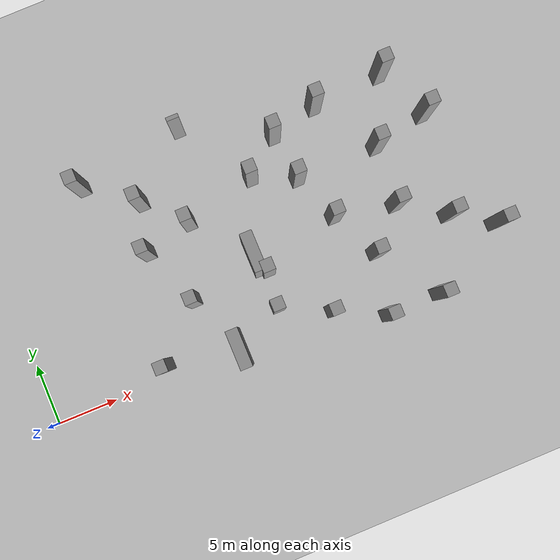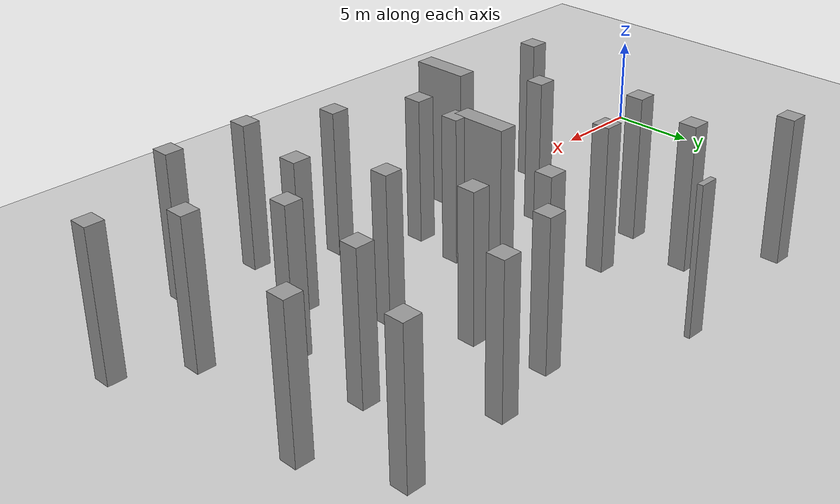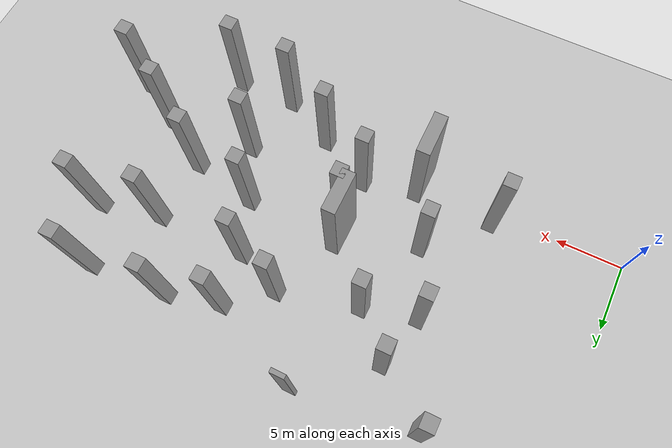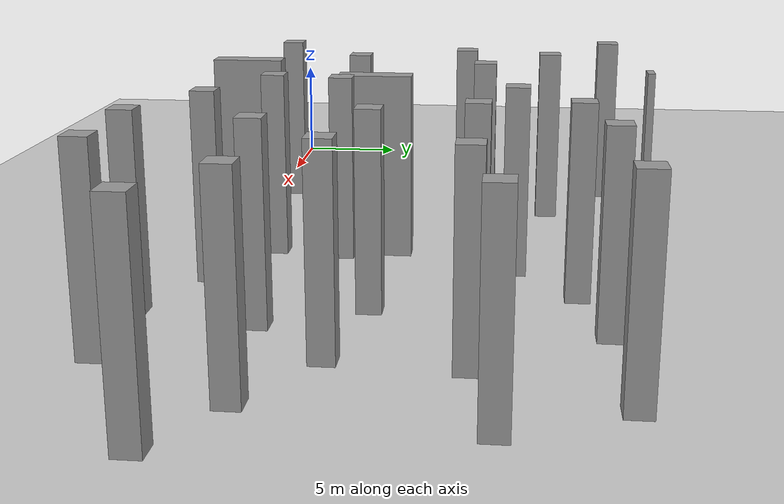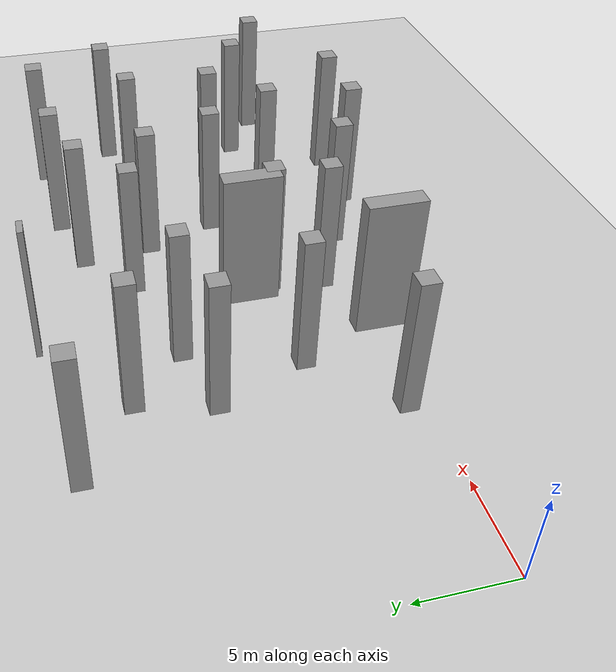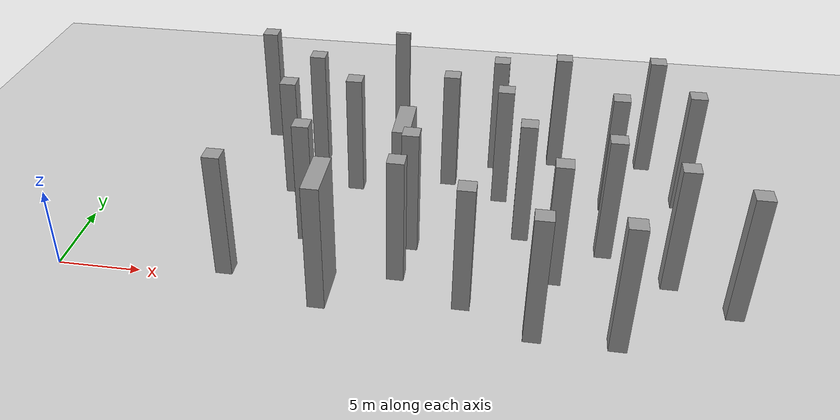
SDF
<sdf version="1.7">
 <world name="default">
  <model name="ground_plane">
   <static>1</static>
   <link name="link">
    <collision name="collision">
     <geometry><plane><normal>0 0 1</normal><size>100 100</size></plane></geometry>
     <surface>
      <contact><collide_bitmask>65535</collide_bitmask></contact>
      <friction><ode><mu>100</mu><mu2>50</mu2></ode></friction>
     </surface>
    </collision>
    <visual name="visual">
     <cast_shadows>0</cast_shadows>
     <geometry><plane><normal>0 0 1</normal><size>100 100</size></plane></geometry>
     <material>
      <script><uri>file://media/materials/scripts/gazebo.material</uri><name>Gazebo/Grey</name></script>
     </material>
    </visual>
   </link>
  </model>
  <model name="unit_box_static_clone_21">
   <link name="link">
    <inertial>
     <mass>1</mass>
     <inertia>
      <ixx>0.166667</ixx>
      <ixy>0</ixy>
      <ixz>0</ixz>
      <iyy>0.166667</iyy>
      <iyz>0</iyz>
      <izz>0.166667</izz>
     </inertia>
    </inertial>
    <visual name="visual">
     <geometry><box><size>1 1 8.00001</size></box></geometry>
     <material>
      <script><name>Gazebo/Grey</name><uri>file://media/materials/scripts/gazebo.material</uri></script>
      <shader type="pixel"/>
     </material>
    </visual>
    <collision name="collision">
     <geometry><box><size>1 1 8.00001</size></box></geometry>
     <surface>
      <friction>
       <ode><mu>1</mu><mu2>1</mu2><fdir1>0 0 0</fdir1><slip1>0</slip1><slip2>0</slip2></ode>
       <torsional>
        <coefficient>1</coefficient>
        <patch_radius>0</patch_radius>
        <surface_radius>0</surface_radius>
        <use_patch_radius>1</use_patch_radius>
        <ode><slip>0</slip></ode>
       </torsional>
      </friction>
      <bounce><restitution_coefficient>0</restitution_coefficient><threshold>1e+06</threshold></bounce>
      <contact>
       <collide_without_contact>0</collide_without_contact>
       <collide_without_contact_bitmask>1</collide_without_contact_bitmask>
       <collide_bitmask>1</collide_bitmask>
       <ode>
        <soft_cfm>0</soft_cfm>
        <soft_erp>0.2</soft_erp>
        <kp>1e+13</kp>
        <kd>1</kd>
        <max_vel>0.01</max_vel>
        <min_depth>0</min_depth>
       </ode>
       <bullet>
        <split_impulse>1</split_impulse>
        <split_impulse_penetration_threshold>-0.01</split_impulse_penetration_threshold>
        <soft_cfm>0</soft_cfm>
        <soft_erp>0.2</soft_erp>
        <kp>1e+13</kp>
        <kd>1</kd>
       </bullet>
      </contact>
     </surface>
    </collision>
   </link>
   <static>1</static>
   <pose>13 14 4 0 -0 0</pose>
  </model>
  <model name="unit_box_static_clone_31">
   <link name="link">
    <inertial>
     <mass>1</mass>
     <inertia>
      <ixx>0.166667</ixx>
      <ixy>0</ixy>
      <ixz>0</ixz>
      <iyy>0.166667</iyy>
      <iyz>0</iyz>
      <izz>0.166667</izz>
     </inertia>
    </inertial>
    <visual name="visual">
     <geometry><box><size>1 1 8.00001</size></box></geometry>
     <material>
      <script><name>Gazebo/Grey</name><uri>file://media/materials/scripts/gazebo.material</uri></script>
      <shader type="pixel"/>
     </material>
    </visual>
    <collision name="collision">
     <geometry><box><size>1 1 8.00001</size></box></geometry>
     <surface>
      <friction>
       <ode><mu>1</mu><mu2>1</mu2><fdir1>0 0 0</fdir1><slip1>0</slip1><slip2>0</slip2></ode>
       <torsional>
        <coefficient>1</coefficient>
        <patch_radius>0</patch_radius>
        <surface_radius>0</surface_radius>
        <use_patch_radius>1</use_patch_radius>
        <ode><slip>0</slip></ode>
       </torsional>
      </friction>
      <bounce><restitution_coefficient>0</restitution_coefficient><threshold>1e+06</threshold></bounce>
      <contact>
       <collide_without_contact>0</collide_without_contact>
       <collide_without_contact_bitmask>1</collide_without_contact_bitmask>
       <collide_bitmask>1</collide_bitmask>
       <ode>
        <soft_cfm>0</soft_cfm>
        <soft_erp>0.2</soft_erp>
        <kp>1e+13</kp>
        <kd>1</kd>
        <max_vel>0.01</max_vel>
        <min_depth>0</min_depth>
       </ode>
       <bullet>
        <split_impulse>1</split_impulse>
        <split_impulse_penetration_threshold>-0.01</split_impulse_penetration_threshold>
        <soft_cfm>0</soft_cfm>
        <soft_erp>0.2</soft_erp>
        <kp>1e+13</kp>
        <kd>1</kd>
       </bullet>
      </contact>
     </surface>
    </collision>
   </link>
   <static>1</static>
   <pose>10 1 4 0 -0 0</pose>
  </model>
  <model name="unit_box_static_clone_36">
   <link name="link">
    <inertial>
     <mass>1</mass>
     <inertia>
      <ixx>0.166667</ixx>
      <ixy>0</ixy>
      <ixz>0</ixz>
      <iyy>0.166667</iyy>
      <iyz>0</iyz>
      <izz>0.166667</izz>
     </inertia>
    </inertial>
    <visual name="visual">
     <geometry><box><size>1 1 8.00001</size></box></geometry>
     <material>
      <script><name>Gazebo/Grey</name><uri>file://media/materials/scripts/gazebo.material</uri></script>
      <shader type="pixel"/>
     </material>
    </visual>
    <collision name="collision">
     <geometry><box><size>1 1 8.00001</size></box></geometry>
     <surface>
      <friction>
       <ode><mu>1</mu><mu2>1</mu2><fdir1>0 0 0</fdir1><slip1>0</slip1><slip2>0</slip2></ode>
       <torsional>
        <coefficient>1</coefficient>
        <patch_radius>0</patch_radius>
        <surface_radius>0</surface_radius>
        <use_patch_radius>1</use_patch_radius>
        <ode><slip>0</slip></ode>
       </torsional>
      </friction>
      <bounce><restitution_coefficient>0</restitution_coefficient><threshold>1e+06</threshold></bounce>
      <contact>
       <collide_without_contact>0</collide_without_contact>
       <collide_without_contact_bitmask>1</collide_without_contact_bitmask>
       <collide_bitmask>1</collide_bitmask>
       <ode>
        <soft_cfm>0</soft_cfm>
        <soft_erp>0.2</soft_erp>
        <kp>1e+13</kp>
        <kd>1</kd>
        <max_vel>0.01</max_vel>
        <min_depth>0</min_depth>
       </ode>
       <bullet>
        <split_impulse>1</split_impulse>
        <split_impulse_penetration_threshold>-0.01</split_impulse_penetration_threshold>
        <soft_cfm>0</soft_cfm>
        <soft_erp>0.2</soft_erp>
        <kp>1e+13</kp>
        <kd>1</kd>
       </bullet>
      </contact>
     </surface>
    </collision>
   </link>
   <static>1</static>
   <pose>12 10 4 0 -0 0</pose>
  </model>
  <model name="unit_box_static_clone_37">
   <link name="link">
    <inertial>
     <mass>1</mass>
     <inertia>
      <ixx>0.166667</ixx>
      <ixy>0</ixy>
      <ixz>0</ixz>
      <iyy>0.166667</iyy>
      <iyz>0</iyz>
      <izz>0.166667</izz>
     </inertia>
    </inertial>
    <visual name="visual">
     <geometry><box><size>1 0.315536 8.00001</size></box></geometry>
     <material>
      <script><name>Gazebo/Grey</name><uri>file://media/materials/scripts/gazebo.material</uri></script>
      <shader type="pixel"/>
     </material>
    </visual>
    <collision name="collision">
     <geometry><box><size>1 0.315536 8.00001</size></box></geometry>
     <surface>
      <friction>
       <ode><mu>1</mu><mu2>1</mu2><fdir1>0 0 0</fdir1><slip1>0</slip1><slip2>0</slip2></ode>
       <torsional>
        <coefficient>1</coefficient>
        <patch_radius>0</patch_radius>
        <surface_radius>0</surface_radius>
        <use_patch_radius>1</use_patch_radius>
        <ode><slip>0</slip></ode>
       </torsional>
      </friction>
      <bounce><restitution_coefficient>0</restitution_coefficient><threshold>1e+06</threshold></bounce>
      <contact>
       <collide_without_contact>0</collide_without_contact>
       <collide_without_contact_bitmask>1</collide_without_contact_bitmask>
       <collide_bitmask>1</collide_bitmask>
       <ode>
        <soft_cfm>0</soft_cfm>
        <soft_erp>0.2</soft_erp>
        <kp>1e+13</kp>
        <kd>1</kd>
        <max_vel>0.01</max_vel>
        <min_depth>0</min_depth>
       </ode>
       <bullet>
        <split_impulse>1</split_impulse>
        <split_impulse_penetration_threshold>-0.01</split_impulse_penetration_threshold>
        <soft_cfm>0</soft_cfm>
        <soft_erp>0.2</soft_erp>
        <kp>1e+13</kp>
        <kd>1</kd>
       </bullet>
      </contact>
     </surface>
    </collision>
   </link>
   <static>1</static>
   <pose>18 18.2071 4 0 -0 0</pose>
  </model>
  <model name="unit_box_static_clone_39">
   <link name="link">
    <inertial>
     <mass>1</mass>
     <inertia>
      <ixx>0.166667</ixx>
      <ixy>0</ixy>
      <ixz>0</ixz>
      <iyy>0.166667</iyy>
      <iyz>0</iyz>
      <izz>0.166667</izz>
     </inertia>
    </inertial>
    <visual name="visual">
     <geometry><box><size>1 1 8.00001</size></box></geometry>
     <material>
      <script><name>Gazebo/Grey</name><uri>file://media/materials/scripts/gazebo.material</uri></script>
      <shader type="pixel"/>
     </material>
    </visual>
    <collision name="collision">
     <geometry><box><size>1 1 8.00001</size></box></geometry>
     <surface>
      <friction>
       <ode><mu>1</mu><mu2>1</mu2><fdir1>0 0 0</fdir1><slip1>0</slip1><slip2>0</slip2></ode>
       <torsional>
        <coefficient>1</coefficient>
        <patch_radius>0</patch_radius>
        <surface_radius>0</surface_radius>
        <use_patch_radius>1</use_patch_radius>
        <ode><slip>0</slip></ode>
       </torsional>
      </friction>
      <bounce><restitution_coefficient>0</restitution_coefficient><threshold>1e+06</threshold></bounce>
      <contact>
       <collide_without_contact>0</collide_without_contact>
       <collide_without_contact_bitmask>1</collide_without_contact_bitmask>
       <collide_bitmask>1</collide_bitmask>
       <ode>
        <soft_cfm>0</soft_cfm>
        <soft_erp>0.2</soft_erp>
        <kp>1e+13</kp>
        <kd>1</kd>
        <max_vel>0.01</max_vel>
        <min_depth>0</min_depth>
       </ode>
       <bullet>
        <split_impulse>1</split_impulse>
        <split_impulse_penetration_threshold>-0.01</split_impulse_penetration_threshold>
        <soft_cfm>0</soft_cfm>
        <soft_erp>0.2</soft_erp>
        <kp>1e+13</kp>
        <kd>1</kd>
       </bullet>
      </contact>
     </surface>
    </collision>
   </link>
   <static>1</static>
   <pose>22 12.4901 4 0 -0 0</pose>
  </model>
  <model name="unit_box_static_clone_40">
   <link name="link">
    <inertial>
     <mass>1</mass>
     <inertia>
      <ixx>0.166667</ixx>
      <ixy>0</ixy>
      <ixz>0</ixz>
      <iyy>0.166667</iyy>
      <iyz>0</iyz>
      <izz>0.166667</izz>
     </inertia>
    </inertial>
    <visual name="visual">
     <geometry><box><size>1 1 8.00001</size></box></geometry>
     <material>
      <script><name>Gazebo/Grey</name><uri>file://media/materials/scripts/gazebo.material</uri></script>
      <shader type="pixel"/>
     </material>
    </visual>
    <collision name="collision">
     <geometry><box><size>1 1 8.00001</size></box></geometry>
     <surface>
      <friction>
       <ode><mu>1</mu><mu2>1</mu2><fdir1>0 0 0</fdir1><slip1>0</slip1><slip2>0</slip2></ode>
       <torsional>
        <coefficient>1</coefficient>
        <patch_radius>0</patch_radius>
        <surface_radius>0</surface_radius>
        <use_patch_radius>1</use_patch_radius>
        <ode><slip>0</slip></ode>
       </torsional>
      </friction>
      <bounce><restitution_coefficient>0</restitution_coefficient><threshold>1e+06</threshold></bounce>
      <contact>
       <collide_without_contact>0</collide_without_contact>
       <collide_without_contact_bitmask>1</collide_without_contact_bitmask>
       <collide_bitmask>1</collide_bitmask>
       <ode>
        <soft_cfm>0</soft_cfm>
        <soft_erp>0.2</soft_erp>
        <kp>1e+13</kp>
        <kd>1</kd>
        <max_vel>0.01</max_vel>
        <min_depth>0</min_depth>
       </ode>
       <bullet>
        <split_impulse>1</split_impulse>
        <split_impulse_penetration_threshold>-0.01</split_impulse_penetration_threshold>
        <soft_cfm>0</soft_cfm>
        <soft_erp>0.2</soft_erp>
        <kp>1e+13</kp>
        <kd>1</kd>
       </bullet>
      </contact>
     </surface>
    </collision>
   </link>
   <static>1</static>
   <pose>20.4005 5 4 0 -0 0</pose>
  </model>
  <model name="unit_box_static_clone_41">
   <link name="link">
    <inertial>
     <mass>1</mass>
     <inertia>
      <ixx>0.166667</ixx>
      <ixy>0</ixy>
      <ixz>0</ixz>
      <iyy>0.166667</iyy>
      <iyz>0</iyz>
      <izz>0.166667</izz>
     </inertia>
    </inertial>
    <visual name="visual">
     <geometry><box><size>1 1 8.00001</size></box></geometry>
     <material>
      <script><name>Gazebo/Grey</name><uri>file://media/materials/scripts/gazebo.material</uri></script>
      <shader type="pixel"/>
     </material>
    </visual>
    <collision name="collision">
     <geometry><box><size>1 1 8.00001</size></box></geometry>
     <surface>
      <friction>
       <ode><mu>1</mu><mu2>1</mu2><fdir1>0 0 0</fdir1><slip1>0</slip1><slip2>0</slip2></ode>
       <torsional>
        <coefficient>1</coefficient>
        <patch_radius>0</patch_radius>
        <surface_radius>0</surface_radius>
        <use_patch_radius>1</use_patch_radius>
        <ode><slip>0</slip></ode>
       </torsional>
      </friction>
      <bounce><restitution_coefficient>0</restitution_coefficient><threshold>1e+06</threshold></bounce>
      <contact>
       <collide_without_contact>0</collide_without_contact>
       <collide_without_contact_bitmask>1</collide_without_contact_bitmask>
       <collide_bitmask>1</collide_bitmask>
       <ode>
        <soft_cfm>0</soft_cfm>
        <soft_erp>0.2</soft_erp>
        <kp>1e+13</kp>
        <kd>1</kd>
        <max_vel>0.01</max_vel>
        <min_depth>0</min_depth>
       </ode>
       <bullet>
        <split_impulse>1</split_impulse>
        <split_impulse_penetration_threshold>-0.01</split_impulse_penetration_threshold>
        <soft_cfm>0</soft_cfm>
        <soft_erp>0.2</soft_erp>
        <kp>1e+13</kp>
        <kd>1</kd>
       </bullet>
      </contact>
     </surface>
    </collision>
   </link>
   <static>1</static>
   <pose>14 5 4 0 -0 0</pose>
  </model>
  <model name="unit_box_static_clone_43">
   <link name="link">
    <inertial>
     <mass>1</mass>
     <inertia>
      <ixx>0.166667</ixx>
      <ixy>0</ixy>
      <ixz>0</ixz>
      <iyy>0.166667</iyy>
      <iyz>0</iyz>
      <izz>0.166667</izz>
     </inertia>
    </inertial>
    <visual name="visual">
     <geometry><box><size>1 1 8.00001</size></box></geometry>
     <material>
      <script><name>Gazebo/Grey</name><uri>file://media/materials/scripts/gazebo.material</uri></script>
      <shader type="pixel"/>
     </material>
    </visual>
    <collision name="collision">
     <geometry><box><size>1 1 8.00001</size></box></geometry>
     <surface>
      <friction>
       <ode><mu>1</mu><mu2>1</mu2><fdir1>0 0 0</fdir1><slip1>0</slip1><slip2>0</slip2></ode>
       <torsional>
        <coefficient>1</coefficient>
        <patch_radius>0</patch_radius>
        <surface_radius>0</surface_radius>
        <use_patch_radius>1</use_patch_radius>
        <ode><slip>0</slip></ode>
       </torsional>
      </friction>
      <bounce><restitution_coefficient>0</restitution_coefficient><threshold>1e+06</threshold></bounce>
      <contact>
       <collide_without_contact>0</collide_without_contact>
       <collide_without_contact_bitmask>1</collide_without_contact_bitmask>
       <collide_bitmask>1</collide_bitmask>
       <ode>
        <soft_cfm>0</soft_cfm>
        <soft_erp>0.2</soft_erp>
        <kp>1e+13</kp>
        <kd>1</kd>
        <max_vel>0.01</max_vel>
        <min_depth>0</min_depth>
       </ode>
       <bullet>
        <split_impulse>1</split_impulse>
        <split_impulse_penetration_threshold>-0.01</split_impulse_penetration_threshold>
        <soft_cfm>0</soft_cfm>
        <soft_erp>0.2</soft_erp>
        <kp>1e+13</kp>
        <kd>1</kd>
       </bullet>
      </contact>
     </surface>
    </collision>
   </link>
   <static>1</static>
   <pose>24 0 4 0 -0 0</pose>
  </model>
  <model name="unit_box_static_clone_45">
   <link name="link">
    <inertial>
     <mass>1</mass>
     <inertia>
      <ixx>0.166667</ixx>
      <ixy>0</ixy>
      <ixz>0</ixz>
      <iyy>0.166667</iyy>
      <iyz>0</iyz>
      <izz>0.166667</izz>
     </inertia>
    </inertial>
    <visual name="visual">
     <geometry><box><size>1 1 8.00001</size></box></geometry>
     <material>
      <script><name>Gazebo/Grey</name><uri>file://media/materials/scripts/gazebo.material</uri></script>
      <shader type="pixel"/>
     </material>
    </visual>
    <collision name="collision">
     <geometry><box><size>1 1 8.00001</size></box></geometry>
     <surface>
      <friction>
       <ode><mu>1</mu><mu2>1</mu2><fdir1>0 0 0</fdir1><slip1>0</slip1><slip2>0</slip2></ode>
       <torsional>
        <coefficient>1</coefficient>
        <patch_radius>0</patch_radius>
        <surface_radius>0</surface_radius>
        <use_patch_radius>1</use_patch_radius>
        <ode><slip>0</slip></ode>
       </torsional>
      </friction>
      <bounce><restitution_coefficient>0</restitution_coefficient><threshold>1e+06</threshold></bounce>
      <contact>
       <collide_without_contact>0</collide_without_contact>
       <collide_without_contact_bitmask>1</collide_without_contact_bitmask>
       <collide_bitmask>1</collide_bitmask>
       <ode>
        <soft_cfm>0</soft_cfm>
        <soft_erp>0.2</soft_erp>
        <kp>1e+13</kp>
        <kd>1</kd>
        <max_vel>0.01</max_vel>
        <min_depth>0</min_depth>
       </ode>
       <bullet>
        <split_impulse>1</split_impulse>
        <split_impulse_penetration_threshold>-0.01</split_impulse_penetration_threshold>
        <soft_cfm>0</soft_cfm>
        <soft_erp>0.2</soft_erp>
        <kp>1e+13</kp>
        <kd>1</kd>
       </bullet>
      </contact>
     </surface>
    </collision>
   </link>
   <static>1</static>
   <pose>20 2 4 0 -0 0</pose>
  </model>
  <model name="unit_box_static_clone_46">
   <link name="link">
    <inertial>
     <mass>1</mass>
     <inertia>
      <ixx>0.166667</ixx>
      <ixy>0</ixy>
      <ixz>0</ixz>
      <iyy>0.166667</iyy>
      <iyz>0</iyz>
      <izz>0.166667</izz>
     </inertia>
    </inertial>
    <visual name="visual">
     <geometry><box><size>1 1 8.00001</size></box></geometry>
     <material>
      <script><name>Gazebo/Grey</name><uri>file://media/materials/scripts/gazebo.material</uri></script>
      <shader type="pixel"/>
     </material>
    </visual>
    <collision name="collision">
     <geometry><box><size>1 1 8.00001</size></box></geometry>
     <surface>
      <friction>
       <ode><mu>1</mu><mu2>1</mu2><fdir1>0 0 0</fdir1><slip1>0</slip1><slip2>0</slip2></ode>
       <torsional>
        <coefficient>1</coefficient>
        <patch_radius>0</patch_radius>
        <surface_radius>0</surface_radius>
        <use_patch_radius>1</use_patch_radius>
        <ode><slip>0</slip></ode>
       </torsional>
      </friction>
      <bounce><restitution_coefficient>0</restitution_coefficient><threshold>1e+06</threshold></bounce>
      <contact>
       <collide_without_contact>0</collide_without_contact>
       <collide_without_contact_bitmask>1</collide_without_contact_bitmask>
       <collide_bitmask>1</collide_bitmask>
       <ode>
        <soft_cfm>0</soft_cfm>
        <soft_erp>0.2</soft_erp>
        <kp>1e+13</kp>
        <kd>1</kd>
        <max_vel>0.01</max_vel>
        <min_depth>0</min_depth>
       </ode>
       <bullet>
        <split_impulse>1</split_impulse>
        <split_impulse_penetration_threshold>-0.01</split_impulse_penetration_threshold>
        <soft_cfm>0</soft_cfm>
        <soft_erp>0.2</soft_erp>
        <kp>1e+13</kp>
        <kd>1</kd>
       </bullet>
      </contact>
     </surface>
    </collision>
   </link>
   <static>1</static>
   <pose>25 15 4 0 -0 0</pose>
  </model>
  <model name="unit_box_static_clone_47">
   <link name="link">
    <inertial>
     <mass>1</mass>
     <inertia>
      <ixx>0.166667</ixx>
      <ixy>0</ixy>
      <ixz>0</ixz>
      <iyy>0.166667</iyy>
      <iyz>0</iyz>
      <izz>0.166667</izz>
     </inertia>
    </inertial>
    <visual name="visual">
     <geometry><box><size>1 1 8.00001</size></box></geometry>
     <material>
      <script><name>Gazebo/Grey</name><uri>file://media/materials/scripts/gazebo.material</uri></script>
      <shader type="pixel"/>
     </material>
    </visual>
    <collision name="collision">
     <geometry><box><size>1 1 8.00001</size></box></geometry>
     <surface>
      <friction>
       <ode><mu>1</mu><mu2>1</mu2><fdir1>0 0 0</fdir1><slip1>0</slip1><slip2>0</slip2></ode>
       <torsional>
        <coefficient>1</coefficient>
        <patch_radius>0</patch_radius>
        <surface_radius>0</surface_radius>
        <use_patch_radius>1</use_patch_radius>
        <ode><slip>0</slip></ode>
       </torsional>
      </friction>
      <bounce><restitution_coefficient>0</restitution_coefficient><threshold>1e+06</threshold></bounce>
      <contact>
       <collide_without_contact>0</collide_without_contact>
       <collide_without_contact_bitmask>1</collide_without_contact_bitmask>
       <collide_bitmask>1</collide_bitmask>
       <ode>
        <soft_cfm>0</soft_cfm>
        <soft_erp>0.2</soft_erp>
        <kp>1e+13</kp>
        <kd>1</kd>
        <max_vel>0.01</max_vel>
        <min_depth>0</min_depth>
       </ode>
       <bullet>
        <split_impulse>1</split_impulse>
        <split_impulse_penetration_threshold>-0.01</split_impulse_penetration_threshold>
        <soft_cfm>0</soft_cfm>
        <soft_erp>0.2</soft_erp>
        <kp>1e+13</kp>
        <kd>1</kd>
       </bullet>
      </contact>
     </surface>
    </collision>
   </link>
   <static>1</static>
   <pose>29 16 4 0 -0 0</pose>
  </model>
  <model name="unit_box_static_clone_49">
   <link name="link">
    <inertial>
     <mass>1</mass>
     <inertia>
      <ixx>0.166667</ixx>
      <ixy>0</ixy>
      <ixz>0</ixz>
      <iyy>0.166667</iyy>
      <iyz>0</iyz>
      <izz>0.166667</izz>
     </inertia>
    </inertial>
    <visual name="visual">
     <geometry><box><size>1 1 8.00001</size></box></geometry>
     <material>
      <script><name>Gazebo/Grey</name><uri>file://media/materials/scripts/gazebo.material</uri></script>
      <shader type="pixel"/>
     </material>
    </visual>
    <collision name="collision">
     <geometry><box><size>1 1 8.00001</size></box></geometry>
     <surface>
      <friction>
       <ode><mu>1</mu><mu2>1</mu2><fdir1>0 0 0</fdir1><slip1>0</slip1><slip2>0</slip2></ode>
       <torsional>
        <coefficient>1</coefficient>
        <patch_radius>0</patch_radius>
        <surface_radius>0</surface_radius>
        <use_patch_radius>1</use_patch_radius>
        <ode><slip>0</slip></ode>
       </torsional>
      </friction>
      <bounce><restitution_coefficient>0</restitution_coefficient><threshold>1e+06</threshold></bounce>
      <contact>
       <collide_without_contact>0</collide_without_contact>
       <collide_without_contact_bitmask>1</collide_without_contact_bitmask>
       <collide_bitmask>1</collide_bitmask>
       <ode>
        <soft_cfm>0</soft_cfm>
        <soft_erp>0.2</soft_erp>
        <kp>1e+13</kp>
        <kd>1</kd>
        <max_vel>0.01</max_vel>
        <min_depth>0</min_depth>
       </ode>
       <bullet>
        <split_impulse>1</split_impulse>
        <split_impulse_penetration_threshold>-0.01</split_impulse_penetration_threshold>
        <soft_cfm>0</soft_cfm>
        <soft_erp>0.2</soft_erp>
        <kp>1e+13</kp>
        <kd>1</kd>
       </bullet>
      </contact>
     </surface>
    </collision>
   </link>
   <static>1</static>
   <pose>25.4799 11 4 0 -0 0</pose>
  </model>
  <model name="unit_box_static_clone_50">
   <link name="link">
    <inertial>
     <mass>1</mass>
     <inertia>
      <ixx>0.166667</ixx>
      <ixy>0</ixy>
      <ixz>0</ixz>
      <iyy>0.166667</iyy>
      <iyz>0</iyz>
      <izz>0.166667</izz>
     </inertia>
    </inertial>
    <visual name="visual">
     <geometry><box><size>1 1 8.00001</size></box></geometry>
     <material>
      <script><name>Gazebo/Grey</name><uri>file://media/materials/scripts/gazebo.material</uri></script>
      <shader type="pixel"/>
     </material>
    </visual>
    <collision name="collision">
     <geometry><box><size>1 1 8.00001</size></box></geometry>
     <surface>
      <friction>
       <ode><mu>1</mu><mu2>1</mu2><fdir1>0 0 0</fdir1><slip1>0</slip1><slip2>0</slip2></ode>
       <torsional>
        <coefficient>1</coefficient>
        <patch_radius>0</patch_radius>
        <surface_radius>0</surface_radius>
        <use_patch_radius>1</use_patch_radius>
        <ode><slip>0</slip></ode>
       </torsional>
      </friction>
      <bounce><restitution_coefficient>0</restitution_coefficient><threshold>1e+06</threshold></bounce>
      <contact>
       <collide_without_contact>0</collide_without_contact>
       <collide_without_contact_bitmask>1</collide_without_contact_bitmask>
       <collide_bitmask>1</collide_bitmask>
       <ode>
        <soft_cfm>0</soft_cfm>
        <soft_erp>0.2</soft_erp>
        <kp>1e+13</kp>
        <kd>1</kd>
        <max_vel>0.01</max_vel>
        <min_depth>0</min_depth>
       </ode>
       <bullet>
        <split_impulse>1</split_impulse>
        <split_impulse_penetration_threshold>-0.01</split_impulse_penetration_threshold>
        <soft_cfm>0</soft_cfm>
        <soft_erp>0.2</soft_erp>
        <kp>1e+13</kp>
        <kd>1</kd>
       </bullet>
      </contact>
     </surface>
    </collision>
   </link>
   <static>1</static>
   <pose>27 7 4 0 -0 0</pose>
  </model>
  <model name="unit_box_static_clone_51">
   <link name="link">
    <inertial>
     <mass>1</mass>
     <inertia>
      <ixx>0.166667</ixx>
      <ixy>0</ixy>
      <ixz>0</ixz>
      <iyy>0.166667</iyy>
      <iyz>0</iyz>
      <izz>0.166667</izz>
     </inertia>
    </inertial>
    <visual name="visual">
     <geometry><box><size>1 1 8.00001</size></box></geometry>
     <material>
      <script><name>Gazebo/Grey</name><uri>file://media/materials/scripts/gazebo.material</uri></script>
      <shader type="pixel"/>
     </material>
    </visual>
    <collision name="collision">
     <geometry><box><size>1 1 8.00001</size></box></geometry>
     <surface>
      <friction>
       <ode><mu>1</mu><mu2>1</mu2><fdir1>0 0 0</fdir1><slip1>0</slip1><slip2>0</slip2></ode>
       <torsional>
        <coefficient>1</coefficient>
        <patch_radius>0</patch_radius>
        <surface_radius>0</surface_radius>
        <use_patch_radius>1</use_patch_radius>
        <ode><slip>0</slip></ode>
       </torsional>
      </friction>
      <bounce><restitution_coefficient>0</restitution_coefficient><threshold>1e+06</threshold></bounce>
      <contact>
       <collide_without_contact>0</collide_without_contact>
       <collide_without_contact_bitmask>1</collide_without_contact_bitmask>
       <collide_bitmask>1</collide_bitmask>
       <ode>
        <soft_cfm>0</soft_cfm>
        <soft_erp>0.2</soft_erp>
        <kp>1e+13</kp>
        <kd>1</kd>
        <max_vel>0.01</max_vel>
        <min_depth>0</min_depth>
       </ode>
       <bullet>
        <split_impulse>1</split_impulse>
        <split_impulse_penetration_threshold>-0.01</split_impulse_penetration_threshold>
        <soft_cfm>0</soft_cfm>
        <soft_erp>0.2</soft_erp>
        <kp>1e+13</kp>
        <kd>1</kd>
       </bullet>
      </contact>
     </surface>
    </collision>
   </link>
   <static>1</static>
   <pose>29 3 4 0 -0 0</pose>
  </model>
  <model name="unit_box_static_clone_52">
   <link name="link">
    <inertial>
     <mass>1</mass>
     <inertia>
      <ixx>0.166667</ixx>
      <ixy>0</ixy>
      <ixz>0</ixz>
      <iyy>0.166667</iyy>
      <iyz>0</iyz>
      <izz>0.166667</izz>
     </inertia>
    </inertial>
    <visual name="visual">
     <geometry><box><size>1 1 8.00001</size></box></geometry>
     <material>
      <script><name>Gazebo/Grey</name><uri>file://media/materials/scripts/gazebo.material</uri></script>
      <shader type="pixel"/>
     </material>
    </visual>
    <collision name="collision">
     <geometry><box><size>1 1 8.00001</size></box></geometry>
     <surface>
      <friction>
       <ode><mu>1</mu><mu2>1</mu2><fdir1>0 0 0</fdir1><slip1>0</slip1><slip2>0</slip2></ode>
       <torsional>
        <coefficient>1</coefficient>
        <patch_radius>0</patch_radius>
        <surface_radius>0</surface_radius>
        <use_patch_radius>1</use_patch_radius>
        <ode><slip>0</slip></ode>
       </torsional>
      </friction>
      <bounce><restitution_coefficient>0</restitution_coefficient><threshold>1e+06</threshold></bounce>
      <contact>
       <collide_without_contact>0</collide_without_contact>
       <collide_without_contact_bitmask>1</collide_without_contact_bitmask>
       <collide_bitmask>1</collide_bitmask>
       <ode>
        <soft_cfm>0</soft_cfm>
        <soft_erp>0.2</soft_erp>
        <kp>1e+13</kp>
        <kd>1</kd>
        <max_vel>0.01</max_vel>
        <min_depth>0</min_depth>
       </ode>
       <bullet>
        <split_impulse>1</split_impulse>
        <split_impulse_penetration_threshold>-0.01</split_impulse_penetration_threshold>
        <soft_cfm>0</soft_cfm>
        <soft_erp>0.2</soft_erp>
        <kp>1e+13</kp>
        <kd>1</kd>
       </bullet>
      </contact>
     </surface>
    </collision>
   </link>
   <static>1</static>
   <pose>28 -2 4 0 -0 0</pose>
  </model>
  <model name="unit_box_static_clone_37_clone_6">
   <link name="link">
    <inertial>
     <mass>1</mass>
     <inertia>
      <ixx>0.166667</ixx>
      <ixy>0</ixy>
      <ixz>0</ixz>
      <iyy>0.166667</iyy>
      <iyz>0</iyz>
      <izz>0.166667</izz>
     </inertia>
    </inertial>
    <visual name="visual">
     <geometry><box><size>1 3.16921 8.00001</size></box></geometry>
     <material>
      <script><name>Gazebo/Grey</name><uri>file://media/materials/scripts/gazebo.material</uri></script>
      <shader type="pixel"/>
     </material>
    </visual>
    <collision name="collision">
     <geometry><box><size>1 3.16921 8.00001</size></box></geometry>
     <surface>
      <friction>
       <ode><mu>1</mu><mu2>1</mu2><fdir1>0 0 0</fdir1><slip1>0</slip1><slip2>0</slip2></ode>
       <torsional>
        <coefficient>1</coefficient>
        <patch_radius>0</patch_radius>
        <surface_radius>0</surface_radius>
        <use_patch_radius>1</use_patch_radius>
        <ode><slip>0</slip></ode>
       </torsional>
      </friction>
      <bounce><restitution_coefficient>0</restitution_coefficient><threshold>1e+06</threshold></bounce>
      <contact>
       <collide_without_contact>0</collide_without_contact>
       <collide_without_contact_bitmask>1</collide_without_contact_bitmask>
       <collide_bitmask>1</collide_bitmask>
       <ode>
        <soft_cfm>0</soft_cfm>
        <soft_erp>0.2</soft_erp>
        <kp>1e+13</kp>
        <kd>1</kd>
        <max_vel>0.01</max_vel>
        <min_depth>0</min_depth>
       </ode>
       <bullet>
        <split_impulse>1</split_impulse>
        <split_impulse_penetration_threshold>-0.01</split_impulse_penetration_threshold>
        <soft_cfm>0</soft_cfm>
        <soft_erp>0.2</soft_erp>
        <kp>1e+13</kp>
        <kd>1</kd>
       </bullet>
      </contact>
     </surface>
    </collision>
   </link>
   <static>1</static>
   <pose>16 0 4 0 -0 0</pose>
  </model>
  <model name="unit_box_static_clone_37_clone_11">
   <link name="link">
    <inertial>
     <mass>1</mass>
     <inertia>
      <ixx>0.166667</ixx>
      <ixy>0</ixy>
      <ixz>0</ixz>
      <iyy>0.166667</iyy>
      <iyz>0</iyz>
      <izz>0.166667</izz>
     </inertia>
    </inertial>
    <visual name="visual">
     <geometry><box><size>1 3.16921 8.00001</size></box></geometry>
     <material>
      <script><name>Gazebo/Grey</name><uri>file://media/materials/scripts/gazebo.material</uri></script>
      <shader type="pixel"/>
     </material>
    </visual>
    <collision name="collision">
     <geometry><box><size>1 3.16921 8.00001</size></box></geometry>
     <surface>
      <friction>
       <ode><mu>1</mu><mu2>1</mu2><fdir1>0 0 0</fdir1><slip1>0</slip1><slip2>0</slip2></ode>
       <torsional>
        <coefficient>1</coefficient>
        <patch_radius>0</patch_radius>
        <surface_radius>0</surface_radius>
        <use_patch_radius>1</use_patch_radius>
        <ode><slip>0</slip></ode>
       </torsional>
      </friction>
      <bounce><restitution_coefficient>0</restitution_coefficient><threshold>1e+06</threshold></bounce>
      <contact>
       <collide_without_contact>0</collide_without_contact>
       <collide_without_contact_bitmask>1</collide_without_contact_bitmask>
       <collide_bitmask>1</collide_bitmask>
       <ode>
        <soft_cfm>0</soft_cfm>
        <soft_erp>0.2</soft_erp>
        <kp>1e+13</kp>
        <kd>1</kd>
        <max_vel>0.01</max_vel>
        <min_depth>0</min_depth>
       </ode>
       <bullet>
        <split_impulse>1</split_impulse>
        <split_impulse_penetration_threshold>-0.01</split_impulse_penetration_threshold>
        <soft_cfm>0</soft_cfm>
        <soft_erp>0.2</soft_erp>
        <kp>1e+13</kp>
        <kd>1</kd>
       </bullet>
      </contact>
     </surface>
    </collision>
   </link>
   <static>1</static>
   <pose>19.8002 6.38006 4 0 -0 0</pose>
  </model>
  <model name="unit_box_static_clone_35_clone_7">
   <link name="link">
    <inertial>
     <mass>1</mass>
     <inertia>
      <ixx>0.166667</ixx>
      <ixy>0</ixy>
      <ixz>0</ixz>
      <iyy>0.166667</iyy>
      <iyz>0</iyz>
      <izz>0.166667</izz>
     </inertia>
    </inertial>
    <visual name="visual">
     <geometry><box><size>1 1 8.00001</size></box></geometry>
     <material>
      <script><name>Gazebo/Grey</name><uri>file://media/materials/scripts/gazebo.material</uri></script>
      <shader type="pixel"/>
     </material>
    </visual>
    <collision name="collision">
     <geometry><box><size>1 1 8.00001</size></box></geometry>
     <surface>
      <friction>
       <ode><mu>1</mu><mu2>1</mu2><fdir1>0 0 0</fdir1><slip1>0</slip1><slip2>0</slip2></ode>
       <torsional>
        <coefficient>1</coefficient>
        <patch_radius>0</patch_radius>
        <surface_radius>0</surface_radius>
        <use_patch_radius>1</use_patch_radius>
        <ode><slip>0</slip></ode>
       </torsional>
      </friction>
      <bounce><restitution_coefficient>0</restitution_coefficient><threshold>1e+06</threshold></bounce>
      <contact>
       <collide_without_contact>0</collide_without_contact>
       <collide_without_contact_bitmask>1</collide_without_contact_bitmask>
       <collide_bitmask>1</collide_bitmask>
       <ode>
        <soft_cfm>0</soft_cfm>
        <soft_erp>0.2</soft_erp>
        <kp>1e+13</kp>
        <kd>1</kd>
        <max_vel>0.01</max_vel>
        <min_depth>0</min_depth>
       </ode>
       <bullet>
        <split_impulse>1</split_impulse>
        <split_impulse_penetration_threshold>-0.01</split_impulse_penetration_threshold>
        <soft_cfm>0</soft_cfm>
        <soft_erp>0.2</soft_erp>
        <kp>1e+13</kp>
        <kd>1</kd>
       </bullet>
      </contact>
     </surface>
    </collision>
   </link>
   <static>1</static>
   <pose>32.4041 11 4 0 -0 0</pose>
  </model>
  <model name="unit_box_static_clone_35_clone_8">
   <link name="link">
    <inertial>
     <mass>1</mass>
     <inertia>
      <ixx>0.166667</ixx>
      <ixy>0</ixy>
      <ixz>0</ixz>
      <iyy>0.166667</iyy>
      <iyz>0</iyz>
      <izz>0.166667</izz>
     </inertia>
    </inertial>
    <visual name="visual">
     <geometry><box><size>1 1 8.00001</size></box></geometry>
     <material>
      <script><name>Gazebo/Grey</name><uri>file://media/materials/scripts/gazebo.material</uri></script>
      <shader type="pixel"/>
     </material>
    </visual>
    <collision name="collision">
     <geometry><box><size>1 1 8.00001</size></box></geometry>
     <surface>
      <friction>
       <ode><mu>1</mu><mu2>1</mu2><fdir1>0 0 0</fdir1><slip1>0</slip1><slip2>0</slip2></ode>
       <torsional>
        <coefficient>1</coefficient>
        <patch_radius>0</patch_radius>
        <surface_radius>0</surface_radius>
        <use_patch_radius>1</use_patch_radius>
        <ode><slip>0</slip></ode>
       </torsional>
      </friction>
      <bounce><restitution_coefficient>0</restitution_coefficient><threshold>1e+06</threshold></bounce>
      <contact>
       <collide_without_contact>0</collide_without_contact>
       <collide_without_contact_bitmask>1</collide_without_contact_bitmask>
       <collide_bitmask>1</collide_bitmask>
       <ode>
        <soft_cfm>0</soft_cfm>
        <soft_erp>0.2</soft_erp>
        <kp>1e+13</kp>
        <kd>1</kd>
        <max_vel>0.01</max_vel>
        <min_depth>0</min_depth>
       </ode>
       <bullet>
        <split_impulse>1</split_impulse>
        <split_impulse_penetration_threshold>-0.01</split_impulse_penetration_threshold>
        <soft_cfm>0</soft_cfm>
        <soft_erp>0.2</soft_erp>
        <kp>1e+13</kp>
        <kd>1</kd>
       </bullet>
      </contact>
     </surface>
    </collision>
   </link>
   <static>1</static>
   <pose>35 16.4229 4 0 -0 0</pose>
  </model>
  <model name="unit_box_static_clone_35_clone_9">
   <link name="link">
    <inertial>
     <mass>1</mass>
     <inertia>
      <ixx>0.166667</ixx>
      <ixy>0</ixy>
      <ixz>0</ixz>
      <iyy>0.166667</iyy>
      <iyz>0</iyz>
      <izz>0.166667</izz>
     </inertia>
    </inertial>
    <visual name="visual">
     <geometry><box><size>1 1 8.00001</size></box></geometry>
     <material>
      <script><name>Gazebo/Grey</name><uri>file://media/materials/scripts/gazebo.material</uri></script>
      <shader type="pixel"/>
     </material>
    </visual>
    <collision name="collision">
     <geometry><box><size>1 1 8.00001</size></box></geometry>
     <surface>
      <friction>
       <ode><mu>1</mu><mu2>1</mu2><fdir1>0 0 0</fdir1><slip1>0</slip1><slip2>0</slip2></ode>
       <torsional>
        <coefficient>1</coefficient>
        <patch_radius>0</patch_radius>
        <surface_radius>0</surface_radius>
        <use_patch_radius>1</use_patch_radius>
        <ode><slip>0</slip></ode>
       </torsional>
      </friction>
      <bounce><restitution_coefficient>0</restitution_coefficient><threshold>1e+06</threshold></bounce>
      <contact>
       <collide_without_contact>0</collide_without_contact>
       <collide_without_contact_bitmask>1</collide_without_contact_bitmask>
       <collide_bitmask>1</collide_bitmask>
       <ode>
        <soft_cfm>0</soft_cfm>
        <soft_erp>0.2</soft_erp>
        <kp>1e+13</kp>
        <kd>1</kd>
        <max_vel>0.01</max_vel>
        <min_depth>0</min_depth>
       </ode>
       <bullet>
        <split_impulse>1</split_impulse>
        <split_impulse_penetration_threshold>-0.01</split_impulse_penetration_threshold>
        <soft_cfm>0</soft_cfm>
        <soft_erp>0.2</soft_erp>
        <kp>1e+13</kp>
        <kd>1</kd>
       </bullet>
      </contact>
     </surface>
    </collision>
   </link>
   <static>1</static>
   <pose>37 12 4 0 -0 0</pose>
  </model>
  <model name="unit_box_static_clone_35_clone_10">
   <link name="link">
    <inertial>
     <mass>1</mass>
     <inertia>
      <ixx>0.166667</ixx>
      <ixy>0</ixy>
      <ixz>0</ixz>
      <iyy>0.166667</iyy>
      <iyz>0</iyz>
      <izz>0.166667</izz>
     </inertia>
    </inertial>
    <visual name="visual">
     <geometry><box><size>1 1 8.00001</size></box></geometry>
     <material>
      <script><name>Gazebo/Grey</name><uri>file://media/materials/scripts/gazebo.material</uri></script>
      <shader type="pixel"/>
     </material>
    </visual>
    <collision name="collision">
     <geometry><box><size>1 1 8.00001</size></box></geometry>
     <surface>
      <friction>
       <ode><mu>1</mu><mu2>1</mu2><fdir1>0 0 0</fdir1><slip1>0</slip1><slip2>0</slip2></ode>
       <torsional>
        <coefficient>1</coefficient>
        <patch_radius>0</patch_radius>
        <surface_radius>0</surface_radius>
        <use_patch_radius>1</use_patch_radius>
        <ode><slip>0</slip></ode>
       </torsional>
      </friction>
      <bounce><restitution_coefficient>0</restitution_coefficient><threshold>1e+06</threshold></bounce>
      <contact>
       <collide_without_contact>0</collide_without_contact>
       <collide_without_contact_bitmask>1</collide_without_contact_bitmask>
       <collide_bitmask>1</collide_bitmask>
       <ode>
        <soft_cfm>0</soft_cfm>
        <soft_erp>0.2</soft_erp>
        <kp>1e+13</kp>
        <kd>1</kd>
        <max_vel>0.01</max_vel>
        <min_depth>0</min_depth>
       </ode>
       <bullet>
        <split_impulse>1</split_impulse>
        <split_impulse_penetration_threshold>-0.01</split_impulse_penetration_threshold>
        <soft_cfm>0</soft_cfm>
        <soft_erp>0.2</soft_erp>
        <kp>1e+13</kp>
        <kd>1</kd>
       </bullet>
      </contact>
     </surface>
    </collision>
   </link>
   <static>1</static>
   <pose>35.6624 3.59492 4 0 -0 0</pose>
  </model>
  <model name="unit_box_static_clone_35_clone_11">
   <link name="link">
    <inertial>
     <mass>1</mass>
     <inertia>
      <ixx>0.166667</ixx>
      <ixy>0</ixy>
      <ixz>0</ixz>
      <iyy>0.166667</iyy>
      <iyz>0</iyz>
      <izz>0.166667</izz>
     </inertia>
    </inertial>
    <visual name="visual">
     <geometry><box><size>1 1 8.00001</size></box></geometry>
     <material>
      <script><name>Gazebo/Grey</name><uri>file://media/materials/scripts/gazebo.material</uri></script>
      <shader type="pixel"/>
     </material>
    </visual>
    <collision name="collision">
     <geometry><box><size>1 1 8.00001</size></box></geometry>
     <surface>
      <friction>
       <ode><mu>1</mu><mu2>1</mu2><fdir1>0 0 0</fdir1><slip1>0</slip1><slip2>0</slip2></ode>
       <torsional>
        <coefficient>1</coefficient>
        <patch_radius>0</patch_radius>
        <surface_radius>0</surface_radius>
        <use_patch_radius>1</use_patch_radius>
        <ode><slip>0</slip></ode>
       </torsional>
      </friction>
      <bounce><restitution_coefficient>0</restitution_coefficient><threshold>1e+06</threshold></bounce>
      <contact>
       <collide_without_contact>0</collide_without_contact>
       <collide_without_contact_bitmask>1</collide_without_contact_bitmask>
       <collide_bitmask>1</collide_bitmask>
       <ode>
        <soft_cfm>0</soft_cfm>
        <soft_erp>0.2</soft_erp>
        <kp>1e+13</kp>
        <kd>1</kd>
        <max_vel>0.01</max_vel>
        <min_depth>0</min_depth>
       </ode>
       <bullet>
        <split_impulse>1</split_impulse>
        <split_impulse_penetration_threshold>-0.01</split_impulse_penetration_threshold>
        <soft_cfm>0</soft_cfm>
        <soft_erp>0.2</soft_erp>
        <kp>1e+13</kp>
        <kd>1</kd>
       </bullet>
      </contact>
     </surface>
    </collision>
   </link>
   <static>1</static>
   <pose>32 6 4 0 -0 0</pose>
  </model>
  <model name="unit_box_static_clone_35_clone_12">
   <link name="link">
    <inertial>
     <mass>1</mass>
     <inertia>
      <ixx>0.166667</ixx>
      <ixy>0</ixy>
      <ixz>0</ixz>
      <iyy>0.166667</iyy>
      <iyz>0</iyz>
      <izz>0.166667</izz>
     </inertia>
    </inertial>
    <visual name="visual">
     <geometry><box><size>1 1 8.00001</size></box></geometry>
     <material>
      <script><name>Gazebo/Grey</name><uri>file://media/materials/scripts/gazebo.material</uri></script>
      <shader type="pixel"/>
     </material>
    </visual>
    <collision name="collision">
     <geometry><box><size>1 1 8.00001</size></box></geometry>
     <surface>
      <friction>
       <ode><mu>1</mu><mu2>1</mu2><fdir1>0 0 0</fdir1><slip1>0</slip1><slip2>0</slip2></ode>
       <torsional>
        <coefficient>1</coefficient>
        <patch_radius>0</patch_radius>
        <surface_radius>0</surface_radius>
        <use_patch_radius>1</use_patch_radius>
        <ode><slip>0</slip></ode>
       </torsional>
      </friction>
      <bounce><restitution_coefficient>0</restitution_coefficient><threshold>1e+06</threshold></bounce>
      <contact>
       <collide_without_contact>0</collide_without_contact>
       <collide_without_contact_bitmask>1</collide_without_contact_bitmask>
       <collide_bitmask>1</collide_bitmask>
       <ode>
        <soft_cfm>0</soft_cfm>
        <soft_erp>0.2</soft_erp>
        <kp>1e+13</kp>
        <kd>1</kd>
        <max_vel>0.01</max_vel>
        <min_depth>0</min_depth>
       </ode>
       <bullet>
        <split_impulse>1</split_impulse>
        <split_impulse_penetration_threshold>-0.01</split_impulse_penetration_threshold>
        <soft_cfm>0</soft_cfm>
        <soft_erp>0.2</soft_erp>
        <kp>1e+13</kp>
        <kd>1</kd>
       </bullet>
      </contact>
     </surface>
    </collision>
   </link>
   <static>1</static>
   <pose>39 1.5 4 0 -0 0</pose>
  </model>
  <model name="unit_box_static_clone_35_clone_16">
   <link name="link">
    <inertial>
     <mass>1</mass>
     <inertia>
      <ixx>0.166667</ixx>
      <ixy>0</ixy>
      <ixz>0</ixz>
      <iyy>0.166667</iyy>
      <iyz>0</iyz>
      <izz>0.166667</izz>
     </inertia>
    </inertial>
    <visual name="visual">
     <geometry><box><size>1 1 8.00001</size></box></geometry>
     <material>
      <script><name>Gazebo/Grey</name><uri>file://media/materials/scripts/gazebo.material</uri></script>
      <shader type="pixel"/>
     </material>
    </visual>
    <collision name="collision">
     <geometry><box><size>1 1 8.00001</size></box></geometry>
     <surface>
      <friction>
       <ode><mu>1</mu><mu2>1</mu2><fdir1>0 0 0</fdir1><slip1>0</slip1><slip2>0</slip2></ode>
       <torsional>
        <coefficient>1</coefficient>
        <patch_radius>0</patch_radius>
        <surface_radius>0</surface_radius>
        <use_patch_radius>1</use_patch_radius>
        <ode><slip>0</slip></ode>
       </torsional>
      </friction>
      <bounce><restitution_coefficient>0</restitution_coefficient><threshold>1e+06</threshold></bounce>
      <contact>
       <collide_without_contact>0</collide_without_contact>
       <collide_without_contact_bitmask>1</collide_without_contact_bitmask>
       <collide_bitmask>1</collide_bitmask>
       <ode>
        <soft_cfm>0</soft_cfm>
        <soft_erp>0.2</soft_erp>
        <kp>1e+13</kp>
        <kd>1</kd>
        <max_vel>0.01</max_vel>
        <min_depth>0</min_depth>
       </ode>
       <bullet>
        <split_impulse>1</split_impulse>
        <split_impulse_penetration_threshold>-0.01</split_impulse_penetration_threshold>
        <soft_cfm>0</soft_cfm>
        <soft_erp>0.2</soft_erp>
        <kp>1e+13</kp>
        <kd>1</kd>
       </bullet>
      </contact>
     </surface>
    </collision>
   </link>
   <static>1</static>
   <pose>32.5 -2 4 0 -0 0</pose>
  </model>
  <model name="unit_box_static_clone_35_clone_23">
   <link name="link">
    <inertial>
     <mass>1</mass>
     <inertia>
      <ixx>0.166667</ixx>
      <ixy>0</ixy>
      <ixz>0</ixz>
      <iyy>0.166667</iyy>
      <iyz>0</iyz>
      <izz>0.166667</izz>
     </inertia>
    </inertial>
    <visual name="visual">
     <geometry><box><size>1 1 8.00001</size></box></geometry>
     <material>
      <script><name>Gazebo/Grey</name><uri>file://media/materials/scripts/gazebo.material</uri></script>
      <shader type="pixel"/>
     </material>
    </visual>
    <collision name="collision">
     <geometry><box><size>1 1 8.00001</size></box></geometry>
     <surface>
      <friction>
       <ode><mu>1</mu><mu2>1</mu2><fdir1>0 0 0</fdir1><slip1>0</slip1><slip2>0</slip2></ode>
       <torsional>
        <coefficient>1</coefficient>
        <patch_radius>0</patch_radius>
        <surface_radius>0</surface_radius>
        <use_patch_radius>1</use_patch_radius>
        <ode><slip>0</slip></ode>
       </torsional>
      </friction>
      <bounce><restitution_coefficient>0</restitution_coefficient><threshold>1e+06</threshold></bounce>
      <contact>
       <collide_without_contact>0</collide_without_contact>
       <collide_without_contact_bitmask>1</collide_without_contact_bitmask>
       <collide_bitmask>1</collide_bitmask>
       <ode>
        <soft_cfm>0</soft_cfm>
        <soft_erp>0.2</soft_erp>
        <kp>1e+13</kp>
        <kd>1</kd>
        <max_vel>0.01</max_vel>
        <min_depth>0</min_depth>
       </ode>
       <bullet>
        <split_impulse>1</split_impulse>
        <split_impulse_penetration_threshold>-0.01</split_impulse_penetration_threshold>
        <soft_cfm>0</soft_cfm>
        <soft_erp>0.2</soft_erp>
        <kp>1e+13</kp>
        <kd>1</kd>
       </bullet>
      </contact>
     </surface>
    </collision>
   </link>
   <static>1</static>
   <pose>16 11 4 0 -0 0</pose>
  </model>
  <model name="unit_box_static_clone_35_clone_24">
   <link name="link">
    <inertial>
     <mass>1</mass>
     <inertia>
      <ixx>0.166667</ixx>
      <ixy>0</ixy>
      <ixz>0</ixz>
      <iyy>0.166667</iyy>
      <iyz>0</iyz>
      <izz>0.166667</izz>
     </inertia>
    </inertial>
    <visual name="visual">
     <geometry><box><size>1 1 8.00001</size></box></geometry>
     <material>
      <script><name>Gazebo/Grey</name><uri>file://media/materials/scripts/gazebo.material</uri></script>
      <shader type="pixel"/>
     </material>
    </visual>
    <collision name="collision">
     <geometry><box><size>1 1 8.00001</size></box></geometry>
     <surface>
      <friction>
       <ode><mu>1</mu><mu2>1</mu2><fdir1>0 0 0</fdir1><slip1>0</slip1><slip2>0</slip2></ode>
       <torsional>
        <coefficient>1</coefficient>
        <patch_radius>0</patch_radius>
        <surface_radius>0</surface_radius>
        <use_patch_radius>1</use_patch_radius>
        <ode><slip>0</slip></ode>
       </torsional>
      </friction>
      <bounce><restitution_coefficient>0</restitution_coefficient><threshold>1e+06</threshold></bounce>
      <contact>
       <collide_without_contact>0</collide_without_contact>
       <collide_without_contact_bitmask>1</collide_without_contact_bitmask>
       <collide_bitmask>1</collide_bitmask>
       <ode>
        <soft_cfm>0</soft_cfm>
        <soft_erp>0.2</soft_erp>
        <kp>1e+13</kp>
        <kd>1</kd>
        <max_vel>0.01</max_vel>
        <min_depth>0</min_depth>
       </ode>
       <bullet>
        <split_impulse>1</split_impulse>
        <split_impulse_penetration_threshold>-0.01</split_impulse_penetration_threshold>
        <soft_cfm>0</soft_cfm>
        <soft_erp>0.2</soft_erp>
        <kp>1e+13</kp>
        <kd>1</kd>
       </bullet>
      </contact>
     </surface>
    </collision>
   </link>
   <static>1</static>
   <pose>9 17 4 0 -0 0</pose>
  </model>
 </world>
</sdf>
